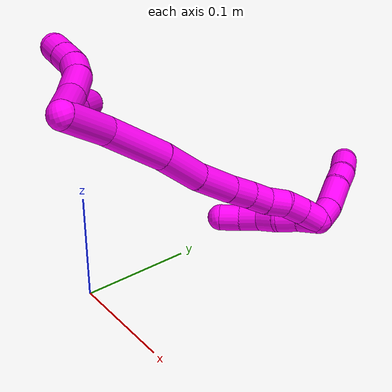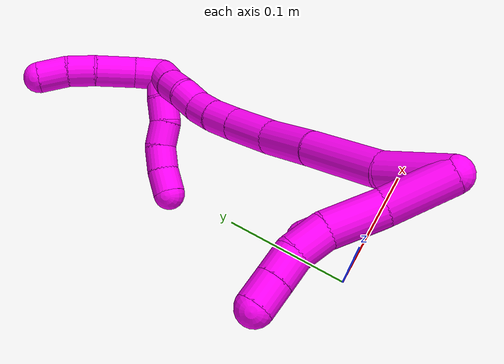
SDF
<sdf version="1.7">
 <world name="default">
  <model name="photoneo_s_sensor">
   <static>1</static>
   <pose>0 0 2 1.57079 1.57079 3.14159</pose>
   <link name="link">
    <inertial><mass>0.1</mass></inertial>
    <sensor name="sensor" type="depth">
     <update_rate>30</update_rate>
     <camera>
      <horizontal_fov>1.22</horizontal_fov>
      <image><width>1920</width><height>1200</height><format>B8G8R8</format></image>
      <clip><near>0.1</near><far>4</far></clip>
      <depth_camera><output>points</output></depth_camera>
     </camera>
     <plugin name="camera_plugin" filename="libgazebo_ros_depth_camera.so">
      <baseline>0.2</baseline>
      <alwaysOn>1</alwaysOn>
      <updateRate>0.0</updateRate>
      <cameraName>camera_ir</cameraName>
      <imageTopicName>/camera/color/image_raw</imageTopicName>
      <cameraInfoTopicName>/camera/color/camera_info</cameraInfoTopicName>
      <depthImageTopicName>/camera/depth/image_raw</depthImageTopicName>
      <depthImageCameraInfoTopicName>/camera/depth/camera_info</depthImageCameraInfoTopicName>
      <pointCloudTopicName>/camera/depth/points</pointCloudTopicName>
      <frameName>fr_optical</frameName>
      <pointCloudCutoff>0.1</pointCloudCutoff>
      <pointCloudCutoffMax>2.0</pointCloudCutoffMax>
      <distortionK1>0</distortionK1>
      <distortionK2>0</distortionK2>
      <distortionK3>0</distortionK3>
      <distortionT1>0</distortionT1>
      <distortionT2>0</distortionT2>
      <CxPrime>0</CxPrime>
      <Cx>0</Cx>
      <Cy>0</Cy>
      <focalLength>0</focalLength>
      <hackBaseline>0</hackBaseline>
     </plugin>
    </sensor>
   </link>
  </model>
  <model name="bin">
   <static>1</static>
   <link name="bottom">
    <collision name="collision-bottom">
     <pose>0 0 -0.01 0 -0 0</pose>
     <geometry><box><size>0.8 0.6 0.02</size></box></geometry>
     <surface>
      <friction><ode><mu>100</mu><mu2>100</mu2></ode></friction>
      <contact><collide_bitmask>65535</collide_bitmask></contact>
     </surface>
    </collision>
   </link>
   <link name="west_wall">
    <collision name="collision-west_wall">
     <pose>-0.41 0 0.1 0 -0 0</pose>
     <geometry><box><size>0.02 0.6 0.2</size></box></geometry>
     <surface>
      <friction><ode><mu>100</mu><mu2>100</mu2></ode></friction>
      <contact><collide_bitmask>65535</collide_bitmask></contact>
     </surface>
    </collision>
   </link>
   <link name="east_wall">
    <collision name="collision-east_wall">
     <pose>0.41 0 0.1 0 -0 0</pose>
     <geometry><box><size>0.02 0.6 0.2</size></box></geometry>
     <surface>
      <friction><ode><mu>100</mu><mu2>100</mu2></ode></friction>
      <contact><collide_bitmask>65535</collide_bitmask></contact>
     </surface>
    </collision>
   </link>
   <link name="south_wall">
    <collision name="collision-south_wall">
     <pose>0 -0.31 0.1 0 -0 0</pose>
     <geometry><box><size>0.8 0.02 0.2</size></box></geometry>
     <surface>
      <friction><ode><mu>100</mu><mu2>100</mu2></ode></friction>
      <contact><collide_bitmask>65535</collide_bitmask></contact>
     </surface>
    </collision>
   </link>
   <link name="north_wall">
    <collision name="collision-north_wall">
     <pose>0 0.31 0.1 0 -0 0</pose>
     <geometry><box><size>0.8 0.02 0.2</size></box></geometry>
     <surface>
      <friction><ode><mu>100</mu><mu2>100</mu2></ode></friction>
      <contact><collide_bitmask>65535</collide_bitmask></contact>
     </surface>
    </collision>
   </link>
  </model>
  <model name="10">
   <static>0</static>
   <link name="10">
    <collision name="collision-cylinder-e_1_2_8">
     <pose>-0.01334 0.018767 0.003786 -1.37174 -0.60855 0.503123</pose>
     <geometry><cylinder><radius>0.0125</radius><length>0.046668</length></cylinder></geometry>
     <surface>
      <friction><ode><mu>1.16</mu><mu2>1.16</mu2><slip1>0</slip1><slip2>0</slip2></ode></friction>
      <contact><ode><kp>1e+06</kp><kd>1</kd><max_vel>0</max_vel><min_depth>0.001</min_depth></ode></contact>
     </surface>
    </collision>
    <visual name="visual-cylinder-e_1_2_8">
     <pose>-0.01334 0.018767 0.003786 -1.37174 -0.60855 0.503123</pose>
     <geometry><cylinder><radius>0.0125</radius><length>0.046668</length></cylinder></geometry>
     <material><ambient>1 0 0.964706 1</ambient></material>
    </visual>
    <collision name="collision-cylinder-e_2_8_9">
     <pose>-0.036292 0.053401 0.013466 -1.2151 -0.516483 0.363252</pose>
     <geometry><cylinder><radius>0.0125</radius><length>0.038932</length></cylinder></geometry>
     <surface>
      <friction><ode><mu>1.16</mu><mu2>1.16</mu2><slip1>0</slip1><slip2>0</slip2></ode></friction>
      <contact><ode><kp>1e+06</kp><kd>1</kd><max_vel>0</max_vel><min_depth>0.001</min_depth></ode></contact>
     </surface>
    </collision>
    <visual name="visual-cylinder-e_2_8_9">
     <pose>-0.036292 0.053401 0.013466 -1.2151 -0.516483 0.363252</pose>
     <geometry><cylinder><radius>0.0125</radius><length>0.038932</length></cylinder></geometry>
     <material><ambient>1 0 0.964706 1</ambient></material>
    </visual>
    <collision name="collision-cylinder-e_3_9_10">
     <pose>-0.053711 0.076792 0.02454 -0.96793 -0.707191 0.383289</pose>
     <geometry><cylinder><radius>0.0125</radius><length>0.02403</length></cylinder></geometry>
     <surface>
      <friction><ode><mu>1.16</mu><mu2>1.16</mu2><slip1>0</slip1><slip2>0</slip2></ode></friction>
      <contact><ode><kp>1e+06</kp><kd>1</kd><max_vel>0</max_vel><min_depth>0.001</min_depth></ode></contact>
     </surface>
    </collision>
    <visual name="visual-cylinder-e_3_9_10">
     <pose>-0.053711 0.076792 0.02454 -0.96793 -0.707191 0.383289</pose>
     <geometry><cylinder><radius>0.0125</radius><length>0.02403</length></cylinder></geometry>
     <material><ambient>1 0 0.964706 1</ambient></material>
    </visual>
    <collision name="collision-cylinder-e_4_10_11">
     <pose>-0.069643 0.088079 0.034545 -0.66221 -0.925273 0.33959</pose>
     <geometry><cylinder><radius>0.0125</radius><length>0.020345</length></cylinder></geometry>
     <surface>
      <friction><ode><mu>1.16</mu><mu2>1.16</mu2><slip1>0</slip1><slip2>0</slip2></ode></friction>
      <contact><ode><kp>1e+06</kp><kd>1</kd><max_vel>0</max_vel><min_depth>0.001</min_depth></ode></contact>
     </surface>
    </collision>
    <visual name="visual-cylinder-e_4_10_11">
     <pose>-0.069643 0.088079 0.034545 -0.66221 -0.925273 0.33959</pose>
     <geometry><cylinder><radius>0.0125</radius><length>0.020345</length></cylinder></geometry>
     <material><ambient>1 0 0.964706 1</ambient></material>
    </visual>
    <collision name="collision-cylinder-e_5_11_6">
     <pose>-0.08579 0.095599 0.044039 -0.67778 -0.929228 0.349732</pose>
     <geometry><cylinder><radius>0.0125</radius><length>0.020025</length></cylinder></geometry>
     <surface>
      <friction><ode><mu>1.16</mu><mu2>1.16</mu2><slip1>0</slip1><slip2>0</slip2></ode></friction>
      <contact><ode><kp>1e+06</kp><kd>1</kd><max_vel>0</max_vel><min_depth>0.001</min_depth></ode></contact>
     </surface>
    </collision>
    <visual name="visual-cylinder-e_5_11_6">
     <pose>-0.08579 0.095599 0.044039 -0.67778 -0.929228 0.349732</pose>
     <geometry><cylinder><radius>0.0125</radius><length>0.020025</length></cylinder></geometry>
     <material><ambient>1 0 0.964706 1</ambient></material>
    </visual>
    <collision name="collision-cylinder-e_1_2_12">
     <pose>-0.015408 0.020438 -0.000996 -1.61951 -0.645409 0.675295</pose>
     <geometry><cylinder><radius>0.0125</radius><length>0.051228</length></cylinder></geometry>
     <surface>
      <friction><ode><mu>1.16</mu><mu2>1.16</mu2><slip1>0</slip1><slip2>0</slip2></ode></friction>
      <contact><ode><kp>1e+06</kp><kd>1</kd><max_vel>0</max_vel><min_depth>0.001</min_depth></ode></contact>
     </surface>
    </collision>
    <visual name="visual-cylinder-e_1_2_12">
     <pose>-0.015408 0.020438 -0.000996 -1.61951 -0.645409 0.675295</pose>
     <geometry><cylinder><radius>0.0125</radius><length>0.051228</length></cylinder></geometry>
     <material><ambient>1 0 0.964706 1</ambient></material>
    </visual>
    <collision name="collision-cylinder-e_2_12_5">
     <pose>-0.044291 0.061154 -0.003354 -1.63785 -0.585496 0.623625</pose>
     <geometry><cylinder><radius>0.0125</radius><length>0.048772</length></cylinder></geometry>
     <surface>
      <friction><ode><mu>1.16</mu><mu2>1.16</mu2><slip1>0</slip1><slip2>0</slip2></ode></friction>
      <contact><ode><kp>1e+06</kp><kd>1</kd><max_vel>0</max_vel><min_depth>0.001</min_depth></ode></contact>
     </surface>
    </collision>
    <visual name="visual-cylinder-e_2_12_5">
     <pose>-0.044291 0.061154 -0.003354 -1.63785 -0.585496 0.623625</pose>
     <geometry><cylinder><radius>0.0125</radius><length>0.048772</length></cylinder></geometry>
     <material><ambient>1 0 0.964706 1</ambient></material>
    </visual>
    <collision name="collision-cylinder-e_1_2_13">
     <pose>-0.004021 0.021809 -0.012509 -2.09153 -0.158594 0.27266</pose>
     <geometry><cylinder><radius>0.0125</radius><length>0.050923</length></cylinder></geometry>
     <surface>
      <friction><ode><mu>1.16</mu><mu2>1.16</mu2><slip1>0</slip1><slip2>0</slip2></ode></friction>
      <contact><ode><kp>1e+06</kp><kd>1</kd><max_vel>0</max_vel><min_depth>0.001</min_depth></ode></contact>
     </surface>
    </collision>
    <visual name="visual-cylinder-e_1_2_13">
     <pose>-0.004021 0.021809 -0.012509 -2.09153 -0.158594 0.27266</pose>
     <geometry><cylinder><radius>0.0125</radius><length>0.050923</length></cylinder></geometry>
     <material><ambient>1 0 0.964706 1</ambient></material>
    </visual>
    <collision name="collision-cylinder-e_2_13_14">
     <pose>-0.007072 0.068212 -0.044227 -2.23393 0.03107 -0.063678</pose>
     <geometry><cylinder><radius>0.0125</radius><length>0.062443</length></cylinder></geometry>
     <surface>
      <friction><ode><mu>1.16</mu><mu2>1.16</mu2><slip1>0</slip1><slip2>0</slip2></ode></friction>
      <contact><ode><kp>1e+06</kp><kd>1</kd><max_vel>0</max_vel><min_depth>0.001</min_depth></ode></contact>
     </surface>
    </collision>
    <visual name="visual-cylinder-e_2_13_14">
     <pose>-0.007072 0.068212 -0.044227 -2.23393 0.03107 -0.063678</pose>
     <geometry><cylinder><radius>0.0125</radius><length>0.062443</length></cylinder></geometry>
     <material><ambient>1 0 0.964706 1</ambient></material>
    </visual>
    <collision name="collision-cylinder-e_3_14_15">
     <pose>-0.006128 0.108923 -0.078365 -2.31787 -0.001161 0.002657</pose>
     <geometry><cylinder><radius>0.0125</radius><length>0.043938</length></cylinder></geometry>
     <surface>
      <friction><ode><mu>1.16</mu><mu2>1.16</mu2><slip1>0</slip1><slip2>0</slip2></ode></friction>
      <contact><ode><kp>1e+06</kp><kd>1</kd><max_vel>0</max_vel><min_depth>0.001</min_depth></ode></contact>
     </surface>
    </collision>
    <visual name="visual-cylinder-e_3_14_15">
     <pose>-0.006128 0.108923 -0.078365 -2.31787 -0.001161 0.002657</pose>
     <geometry><cylinder><radius>0.0125</radius><length>0.043938</length></cylinder></geometry>
     <material><ambient>1 0 0.964706 1</ambient></material>
    </visual>
    <collision name="collision-cylinder-e_4_15_16">
     <pose>-0.00485 0.140392 -0.10471 -2.21025 0.068038 -0.135237</pose>
     <geometry><cylinder><radius>0.0125</radius><length>0.038352</length></cylinder></geometry>
     <surface>
      <friction><ode><mu>1.16</mu><mu2>1.16</mu2><slip1>0</slip1><slip2>0</slip2></ode></friction>
      <contact><ode><kp>1e+06</kp><kd>1</kd><max_vel>0</max_vel><min_depth>0.001</min_depth></ode></contact>
     </surface>
    </collision>
    <visual name="visual-cylinder-e_4_15_16">
     <pose>-0.00485 0.140392 -0.10471 -2.21025 0.068038 -0.135237</pose>
     <geometry><cylinder><radius>0.0125</radius><length>0.038352</length></cylinder></geometry>
     <material><ambient>1 0 0.964706 1</ambient></material>
    </visual>
    <collision name="collision-cylinder-e_5_16_17">
     <pose>-0.002291 0.165672 -0.122739 -2.15831 0.104874 -0.1954</pose>
     <geometry><cylinder><radius>0.0125</radius><length>0.023989</length></cylinder></geometry>
     <surface>
      <friction><ode><mu>1.16</mu><mu2>1.16</mu2><slip1>0</slip1><slip2>0</slip2></ode></friction>
      <contact><ode><kp>1e+06</kp><kd>1</kd><max_vel>0</max_vel><min_depth>0.001</min_depth></ode></contact>
     </surface>
    </collision>
    <visual name="visual-cylinder-e_5_16_17">
     <pose>-0.002291 0.165672 -0.122739 -2.15831 0.104874 -0.1954</pose>
     <geometry><cylinder><radius>0.0125</radius><length>0.023989</length></cylinder></geometry>
     <material><ambient>1 0 0.964706 1</ambient></material>
    </visual>
    <collision name="collision-cylinder-e_6_17_18">
     <pose>0.000854 0.183435 -0.13552 -2.23781 0.187171 -0.382026</pose>
     <geometry><cylinder><radius>0.0125</radius><length>0.020298</length></cylinder></geometry>
     <surface>
      <friction><ode><mu>1.16</mu><mu2>1.16</mu2><slip1>0</slip1><slip2>0</slip2></ode></friction>
      <contact><ode><kp>1e+06</kp><kd>1</kd><max_vel>0</max_vel><min_depth>0.001</min_depth></ode></contact>
     </surface>
    </collision>
    <visual name="visual-cylinder-e_6_17_18">
     <pose>0.000854 0.183435 -0.13552 -2.23781 0.187171 -0.382026</pose>
     <geometry><cylinder><radius>0.0125</radius><length>0.020298</length></cylinder></geometry>
     <material><ambient>1 0 0.964706 1</ambient></material>
    </visual>
    <collision name="collision-cylinder-e_7_18_19">
     <pose>0.006604 0.19916 -0.146517 -2.11988 0.395467 -0.686617</pose>
     <geometry><cylinder><radius>0.0125</radius><length>0.020048</length></cylinder></geometry>
     <surface>
      <friction><ode><mu>1.16</mu><mu2>1.16</mu2><slip1>0</slip1><slip2>0</slip2></ode></friction>
      <contact><ode><kp>1e+06</kp><kd>1</kd><max_vel>0</max_vel><min_depth>0.001</min_depth></ode></contact>
     </surface>
    </collision>
    <visual name="visual-cylinder-e_7_18_19">
     <pose>0.006604 0.19916 -0.146517 -2.11988 0.395467 -0.686617</pose>
     <geometry><cylinder><radius>0.0125</radius><length>0.020048</length></cylinder></geometry>
     <material><ambient>1 0 0.964706 1</ambient></material>
    </visual>
    <collision name="collision-cylinder-e_8_19_20">
     <pose>0.012753 0.214127 -0.158037 -2.32834 0.23069 -0.525649</pose>
     <geometry><cylinder><radius>0.0125</radius><length>0.020009</length></cylinder></geometry>
     <surface>
      <friction><ode><mu>1.16</mu><mu2>1.16</mu2><slip1>0</slip1><slip2>0</slip2></ode></friction>
      <contact><ode><kp>1e+06</kp><kd>1</kd><max_vel>0</max_vel><min_depth>0.001</min_depth></ode></contact>
     </surface>
    </collision>
    <visual name="visual-cylinder-e_8_19_20">
     <pose>0.012753 0.214127 -0.158037 -2.32834 0.23069 -0.525649</pose>
     <geometry><cylinder><radius>0.0125</radius><length>0.020009</length></cylinder></geometry>
     <material><ambient>1 0 0.964706 1</ambient></material>
    </visual>
    <collision name="collision-cylinder-e_9_20_1">
     <pose>0.017933 0.227381 -0.172041 -2.44005 0.293469 -0.767773</pose>
     <geometry><cylinder><radius>0.0125</radius><length>0.020001</length></cylinder></geometry>
     <surface>
      <friction><ode><mu>1.16</mu><mu2>1.16</mu2><slip1>0</slip1><slip2>0</slip2></ode></friction>
      <contact><ode><kp>1e+06</kp><kd>1</kd><max_vel>0</max_vel><min_depth>0.001</min_depth></ode></contact>
     </surface>
    </collision>
    <visual name="visual-cylinder-e_9_20_1">
     <pose>0.017933 0.227381 -0.172041 -2.44005 0.293469 -0.767773</pose>
     <geometry><cylinder><radius>0.0125</radius><length>0.020001</length></cylinder></geometry>
     <material><ambient>1 0 0.964706 1</ambient></material>
    </visual>
    <collision name="collision-cylinder-e_1_1_21">
     <pose>0.011535 0.231191 -0.176514 0.695264 -1.19207 -0.482028</pose>
     <geometry><cylinder><radius>0.0125</radius><length>0.02</length></cylinder></geometry>
     <surface>
      <friction><ode><mu>1.16</mu><mu2>1.16</mu2><slip1>0</slip1><slip2>0</slip2></ode></friction>
      <contact><ode><kp>1e+06</kp><kd>1</kd><max_vel>0</max_vel><min_depth>0.001</min_depth></ode></contact>
     </surface>
    </collision>
    <visual name="visual-cylinder-e_1_1_21">
     <pose>0.011535 0.231191 -0.176514 0.695264 -1.19207 -0.482028</pose>
     <geometry><cylinder><radius>0.0125</radius><length>0.02</length></cylinder></geometry>
     <material><ambient>1 0 0.964706 1</ambient></material>
    </visual>
    <collision name="collision-cylinder-e_2_21_22">
     <pose>-0.006981 0.225488 -0.171729 1.04231 -1.17446 -0.729943</pose>
     <geometry><cylinder><radius>0.0125</radius><length>0.02</length></cylinder></geometry>
     <surface>
      <friction><ode><mu>1.16</mu><mu2>1.16</mu2><slip1>0</slip1><slip2>0</slip2></ode></friction>
      <contact><ode><kp>1e+06</kp><kd>1</kd><max_vel>0</max_vel><min_depth>0.001</min_depth></ode></contact>
     </surface>
    </collision>
    <visual name="visual-cylinder-e_2_21_22">
     <pose>-0.006981 0.225488 -0.171729 1.04231 -1.17446 -0.729943</pose>
     <geometry><cylinder><radius>0.0125</radius><length>0.02</length></cylinder></geometry>
     <material><ambient>1 0 0.964706 1</ambient></material>
    </visual>
    <collision name="collision-cylinder-e_3_22_23">
     <pose>-0.026053 0.22219 -0.168041 -0.020554 -1.39573 0.017238</pose>
     <geometry><cylinder><radius>0.0125</radius><length>0.02</length></cylinder></geometry>
     <surface>
      <friction><ode><mu>1.16</mu><mu2>1.16</mu2><slip1>0</slip1><slip2>0</slip2></ode></friction>
      <contact><ode><kp>1e+06</kp><kd>1</kd><max_vel>0</max_vel><min_depth>0.001</min_depth></ode></contact>
     </surface>
    </collision>
    <visual name="visual-cylinder-e_3_22_23">
     <pose>-0.026053 0.22219 -0.168041 -0.020554 -1.39573 0.017238</pose>
     <geometry><cylinder><radius>0.0125</radius><length>0.02</length></cylinder></geometry>
     <material><ambient>1 0 0.964706 1</ambient></material>
    </visual>
    <collision name="collision-cylinder-e_4_23_24">
     <pose>-0.045079 0.21895 -0.164058 0.970738 -1.16265 -0.667237</pose>
     <geometry><cylinder><radius>0.0125</radius><length>0.02</length></cylinder></geometry>
     <surface>
      <friction><ode><mu>1.16</mu><mu2>1.16</mu2><slip1>0</slip1><slip2>0</slip2></ode></friction>
      <contact><ode><kp>1e+06</kp><kd>1</kd><max_vel>0</max_vel><min_depth>0.001</min_depth></ode></contact>
     </surface>
    </collision>
    <visual name="visual-cylinder-e_4_23_24">
     <pose>-0.045079 0.21895 -0.164058 0.970738 -1.16265 -0.667237</pose>
     <geometry><cylinder><radius>0.0125</radius><length>0.02</length></cylinder></geometry>
     <material><ambient>1 0 0.964706 1</ambient></material>
    </visual>
    <collision name="collision-cylinder-e_5_24_4">
     <pose>-0.062491 0.210913 -0.158728 0.995274 -0.96725 -0.555876</pose>
     <geometry><cylinder><radius>0.0125</radius><length>0.02</length></cylinder></geometry>
     <surface>
      <friction><ode><mu>1.16</mu><mu2>1.16</mu2><slip1>0</slip1><slip2>0</slip2></ode></friction>
      <contact><ode><kp>1e+06</kp><kd>1</kd><max_vel>0</max_vel><min_depth>0.001</min_depth></ode></contact>
     </surface>
    </collision>
    <visual name="visual-cylinder-e_5_24_4">
     <pose>-0.062491 0.210913 -0.158728 0.995274 -0.96725 -0.555876</pose>
     <geometry><cylinder><radius>0.0125</radius><length>0.02</length></cylinder></geometry>
     <material><ambient>1 0 0.964706 1</ambient></material>
    </visual>
    <collision name="collision-cylinder-e_1_1_25">
     <pose>0.019879 0.244504 -0.177357 -1.39036 -0.084961 0.070877</pose>
     <geometry><cylinder><radius>0.0125</radius><length>0.022333</length></cylinder></geometry>
     <surface>
      <friction><ode><mu>1.16</mu><mu2>1.16</mu2><slip1>0</slip1><slip2>0</slip2></ode></friction>
      <contact><ode><kp>1e+06</kp><kd>1</kd><max_vel>0</max_vel><min_depth>0.001</min_depth></ode></contact>
     </surface>
    </collision>
    <visual name="visual-cylinder-e_1_1_25">
     <pose>0.019879 0.244504 -0.177357 -1.39036 -0.084961 0.070877</pose>
     <geometry><cylinder><radius>0.0125</radius><length>0.022333</length></cylinder></geometry>
     <material><ambient>1 0 0.964706 1</ambient></material>
    </visual>
    <collision name="collision-cylinder-e_2_25_26">
     <pose>0.017069 0.27013 -0.168718 -1.14586 -0.115046 0.074266</pose>
     <geometry><cylinder><radius>0.0125</radius><length>0.032439</length></cylinder></geometry>
     <surface>
      <friction><ode><mu>1.16</mu><mu2>1.16</mu2><slip1>0</slip1><slip2>0</slip2></ode></friction>
      <contact><ode><kp>1e+06</kp><kd>1</kd><max_vel>0</max_vel><min_depth>0.001</min_depth></ode></contact>
     </surface>
    </collision>
    <visual name="visual-cylinder-e_2_25_26">
     <pose>0.017069 0.27013 -0.168718 -1.14586 -0.115046 0.074266</pose>
     <geometry><cylinder><radius>0.0125</radius><length>0.032439</length></cylinder></geometry>
     <material><ambient>1 0 0.964706 1</ambient></material>
    </visual>
    <collision name="collision-cylinder-e_3_26_27">
     <pose>0.013191 0.294962 -0.158992 -1.27597 -0.187802 0.139423</pose>
     <geometry><cylinder><radius>0.0125</radius><length>0.021601</length></cylinder></geometry>
     <surface>
      <friction><ode><mu>1.16</mu><mu2>1.16</mu2><slip1>0</slip1><slip2>0</slip2></ode></friction>
      <contact><ode><kp>1e+06</kp><kd>1</kd><max_vel>0</max_vel><min_depth>0.001</min_depth></ode></contact>
     </surface>
    </collision>
    <visual name="visual-cylinder-e_3_26_27">
     <pose>0.013191 0.294962 -0.158992 -1.27597 -0.187802 0.139423</pose>
     <geometry><cylinder><radius>0.0125</radius><length>0.021601</length></cylinder></geometry>
     <material><ambient>1 0 0.964706 1</ambient></material>
    </visual>
    <collision name="collision-cylinder-e_4_27_3">
     <pose>0.006834 0.315641 -0.152761 -1.28021 -0.376235 0.281661</pose>
     <geometry><cylinder><radius>0.0125</radius><length>0.023626</length></cylinder></geometry>
     <surface>
      <friction><ode><mu>1.16</mu><mu2>1.16</mu2><slip1>0</slip1><slip2>0</slip2></ode></friction>
      <contact><ode><kp>1e+06</kp><kd>1</kd><max_vel>0</max_vel><min_depth>0.001</min_depth></ode></contact>
     </surface>
    </collision>
    <visual name="visual-cylinder-e_4_27_3">
     <pose>0.006834 0.315641 -0.152761 -1.28021 -0.376235 0.281661</pose>
     <geometry><cylinder><radius>0.0125</radius><length>0.023626</length></cylinder></geometry>
     <material><ambient>1 0 0.964706 1</ambient></material>
    </visual>
    <collision name="collision-sphere-3">
     <pose>0.002493 0.326168 -0.149613 0 -0 0</pose>
     <geometry><sphere><radius>0.0125</radius></sphere></geometry>
     <surface>
      <friction><ode><mu>1.16</mu><mu2>1.16</mu2><slip1>0</slip1><slip2>0</slip2></ode></friction>
      <contact><ode><kp>1e+06</kp><kd>1</kd><max_vel>0</max_vel><min_depth>0.001</min_depth></ode></contact>
     </surface>
    </collision>
    <visual name="visual-sphere-3">
     <pose>0.002493 0.326168 -0.149613 0 -0 0</pose>
     <geometry><sphere><radius>0.0125</radius></sphere></geometry>
     <material><ambient>1 0 0.964706 1</ambient></material>
    </visual>
    <collision name="collision-sphere-27">
     <pose>0.011174 0.305115 -0.155909 0 -0 0</pose>
     <geometry><sphere><radius>0.0125</radius></sphere></geometry>
     <surface>
      <friction><ode><mu>1.16</mu><mu2>1.16</mu2><slip1>0</slip1><slip2>0</slip2></ode></friction>
      <contact><ode><kp>1e+06</kp><kd>1</kd><max_vel>0</max_vel><min_depth>0.001</min_depth></ode></contact>
     </surface>
    </collision>
    <visual name="visual-sphere-27">
     <pose>0.011174 0.305115 -0.155909 0 -0 0</pose>
     <geometry><sphere><radius>0.0125</radius></sphere></geometry>
     <material><ambient>1 0 0.964706 1</ambient></material>
    </visual>
    <collision name="collision-sphere-26">
     <pose>0.015207 0.284809 -0.162075 0 -0 0</pose>
     <geometry><sphere><radius>0.0125</radius></sphere></geometry>
     <surface>
      <friction><ode><mu>1.16</mu><mu2>1.16</mu2><slip1>0</slip1><slip2>0</slip2></ode></friction>
      <contact><ode><kp>1e+06</kp><kd>1</kd><max_vel>0</max_vel><min_depth>0.001</min_depth></ode></contact>
     </surface>
    </collision>
    <visual name="visual-sphere-26">
     <pose>0.015207 0.284809 -0.162075 0 -0 0</pose>
     <geometry><sphere><radius>0.0125</radius></sphere></geometry>
     <material><ambient>1 0 0.964706 1</ambient></material>
    </visual>
    <collision name="collision-sphere-25">
     <pose>0.018931 0.25545 -0.17536 0 -0 0</pose>
     <geometry><sphere><radius>0.0125</radius></sphere></geometry>
     <surface>
      <friction><ode><mu>1.16</mu><mu2>1.16</mu2><slip1>0</slip1><slip2>0</slip2></ode></friction>
      <contact><ode><kp>1e+06</kp><kd>1</kd><max_vel>0</max_vel><min_depth>0.001</min_depth></ode></contact>
     </surface>
    </collision>
    <visual name="visual-sphere-25">
     <pose>0.018931 0.25545 -0.17536 0 -0 0</pose>
     <geometry><sphere><radius>0.0125</radius></sphere></geometry>
     <material><ambient>1 0 0.964706 1</ambient></material>
    </visual>
    <collision name="collision-sphere-4">
     <pose>-0.070724 0.206152 -0.155639 0 -0 0</pose>
     <geometry><sphere><radius>0.0125</radius></sphere></geometry>
     <surface>
      <friction><ode><mu>1.16</mu><mu2>1.16</mu2><slip1>0</slip1><slip2>0</slip2></ode></friction>
      <contact><ode><kp>1e+06</kp><kd>1</kd><max_vel>0</max_vel><min_depth>0.001</min_depth></ode></contact>
     </surface>
    </collision>
    <visual name="visual-sphere-4">
     <pose>-0.070724 0.206152 -0.155639 0 -0 0</pose>
     <geometry><sphere><radius>0.0125</radius></sphere></geometry>
     <material><ambient>1 0 0.964706 1</ambient></material>
    </visual>
    <collision name="collision-sphere-24">
     <pose>-0.054258 0.215675 -0.161817 0 -0 0</pose>
     <geometry><sphere><radius>0.0125</radius></sphere></geometry>
     <surface>
      <friction><ode><mu>1.16</mu><mu2>1.16</mu2><slip1>0</slip1><slip2>0</slip2></ode></friction>
      <contact><ode><kp>1e+06</kp><kd>1</kd><max_vel>0</max_vel><min_depth>0.001</min_depth></ode></contact>
     </surface>
    </collision>
    <visual name="visual-sphere-24">
     <pose>-0.054258 0.215675 -0.161817 0 -0 0</pose>
     <geometry><sphere><radius>0.0125</radius></sphere></geometry>
     <material><ambient>1 0 0.964706 1</ambient></material>
    </visual>
    <collision name="collision-sphere-23">
     <pose>-0.0359 0.222226 -0.166299 0 -0 0</pose>
     <geometry><sphere><radius>0.0125</radius></sphere></geometry>
     <surface>
      <friction><ode><mu>1.16</mu><mu2>1.16</mu2><slip1>0</slip1><slip2>0</slip2></ode></friction>
      <contact><ode><kp>1e+06</kp><kd>1</kd><max_vel>0</max_vel><min_depth>0.001</min_depth></ode></contact>
     </surface>
    </collision>
    <visual name="visual-sphere-23">
     <pose>-0.0359 0.222226 -0.166299 0 -0 0</pose>
     <geometry><sphere><radius>0.0125</radius></sphere></geometry>
     <material><ambient>1 0 0.964706 1</ambient></material>
    </visual>
    <collision name="collision-sphere-22">
     <pose>-0.016206 0.222155 -0.169782 0 -0 0</pose>
     <geometry><sphere><radius>0.0125</radius></sphere></geometry>
     <surface>
      <friction><ode><mu>1.16</mu><mu2>1.16</mu2><slip1>0</slip1><slip2>0</slip2></ode></friction>
      <contact><ode><kp>1e+06</kp><kd>1</kd><max_vel>0</max_vel><min_depth>0.001</min_depth></ode></contact>
     </surface>
    </collision>
    <visual name="visual-sphere-22">
     <pose>-0.016206 0.222155 -0.169782 0 -0 0</pose>
     <geometry><sphere><radius>0.0125</radius></sphere></geometry>
     <material><ambient>1 0 0.964706 1</ambient></material>
    </visual>
    <collision name="collision-sphere-21">
     <pose>0.002243 0.228822 -0.173675 0 -0 0</pose>
     <geometry><sphere><radius>0.0125</radius></sphere></geometry>
     <surface>
      <friction><ode><mu>1.16</mu><mu2>1.16</mu2><slip1>0</slip1><slip2>0</slip2></ode></friction>
      <contact><ode><kp>1e+06</kp><kd>1</kd><max_vel>0</max_vel><min_depth>0.001</min_depth></ode></contact>
     </surface>
    </collision>
    <visual name="visual-sphere-21">
     <pose>0.002243 0.228822 -0.173675 0 -0 0</pose>
     <geometry><sphere><radius>0.0125</radius></sphere></geometry>
     <material><ambient>1 0 0.964706 1</ambient></material>
    </visual>
    <collision name="collision-sphere-1">
     <pose>0.020826 0.233559 -0.179353 0 -0 0</pose>
     <geometry><sphere><radius>0.0125</radius></sphere></geometry>
     <surface>
      <friction><ode><mu>1.16</mu><mu2>1.16</mu2><slip1>0</slip1><slip2>0</slip2></ode></friction>
      <contact><ode><kp>1e+06</kp><kd>1</kd><max_vel>0</max_vel><min_depth>0.001</min_depth></ode></contact>
     </surface>
    </collision>
    <visual name="visual-sphere-1">
     <pose>0.020826 0.233559 -0.179353 0 -0 0</pose>
     <geometry><sphere><radius>0.0125</radius></sphere></geometry>
     <material><ambient>1 0 0.964706 1</ambient></material>
    </visual>
    <collision name="collision-sphere-6">
     <pose>-0.093811 0.099356 0.048707 0 -0 0</pose>
     <geometry><sphere><radius>0.0125</radius></sphere></geometry>
     <surface>
      <friction><ode><mu>1.16</mu><mu2>1.16</mu2><slip1>0</slip1><slip2>0</slip2></ode></friction>
      <contact><ode><kp>1e+06</kp><kd>1</kd><max_vel>0</max_vel><min_depth>0.001</min_depth></ode></contact>
     </surface>
    </collision>
    <visual name="visual-sphere-6">
     <pose>-0.093811 0.099356 0.048707 0 -0 0</pose>
     <geometry><sphere><radius>0.0125</radius></sphere></geometry>
     <material><ambient>1 0 0.964706 1</ambient></material>
    </visual>
    <collision name="collision-sphere-11">
     <pose>-0.077768 0.091841 0.039371 0 -0 0</pose>
     <geometry><sphere><radius>0.0125</radius></sphere></geometry>
     <surface>
      <friction><ode><mu>1.16</mu><mu2>1.16</mu2><slip1>0</slip1><slip2>0</slip2></ode></friction>
      <contact><ode><kp>1e+06</kp><kd>1</kd><max_vel>0</max_vel><min_depth>0.001</min_depth></ode></contact>
     </surface>
    </collision>
    <visual name="visual-sphere-11">
     <pose>-0.077768 0.091841 0.039371 0 -0 0</pose>
     <geometry><sphere><radius>0.0125</radius></sphere></geometry>
     <material><ambient>1 0 0.964706 1</ambient></material>
    </visual>
    <collision name="collision-sphere-10">
     <pose>-0.061517 0.084316 0.029719 0 -0 0</pose>
     <geometry><sphere><radius>0.0125</radius></sphere></geometry>
     <surface>
      <friction><ode><mu>1.16</mu><mu2>1.16</mu2><slip1>0</slip1><slip2>0</slip2></ode></friction>
      <contact><ode><kp>1e+06</kp><kd>1</kd><max_vel>0</max_vel><min_depth>0.001</min_depth></ode></contact>
     </surface>
    </collision>
    <visual name="visual-sphere-10">
     <pose>-0.061517 0.084316 0.029719 0 -0 0</pose>
     <geometry><sphere><radius>0.0125</radius></sphere></geometry>
     <material><ambient>1 0 0.964706 1</ambient></material>
    </visual>
    <collision name="collision-sphere-9">
     <pose>-0.045905 0.069269 0.019361 0 -0 0</pose>
     <geometry><sphere><radius>0.0125</radius></sphere></geometry>
     <surface>
      <friction><ode><mu>1.16</mu><mu2>1.16</mu2><slip1>0</slip1><slip2>0</slip2></ode></friction>
      <contact><ode><kp>1e+06</kp><kd>1</kd><max_vel>0</max_vel><min_depth>0.001</min_depth></ode></contact>
     </surface>
    </collision>
    <visual name="visual-sphere-9">
     <pose>-0.045905 0.069269 0.019361 0 -0 0</pose>
     <geometry><sphere><radius>0.0125</radius></sphere></geometry>
     <material><ambient>1 0 0.964706 1</ambient></material>
    </visual>
    <collision name="collision-sphere-2">
     <geometry><sphere><radius>0.0125</radius></sphere></geometry>
     <surface>
      <friction><ode><mu>1.16</mu><mu2>1.16</mu2><slip1>0</slip1><slip2>0</slip2></ode></friction>
      <contact><ode><kp>1e+06</kp><kd>1</kd><max_vel>0</max_vel><min_depth>0.001</min_depth></ode></contact>
     </surface>
    </collision>
    <visual name="visual-sphere-2">
     <geometry><sphere><radius>0.0125</radius></sphere></geometry>
     <material><ambient>1 0 0.964706 1</ambient></material>
    </visual>
    <collision name="collision-sphere-19">
     <pose>0.010465 0.207051 -0.151344 0 -0 0</pose>
     <geometry><sphere><radius>0.0125</radius></sphere></geometry>
     <surface>
      <friction><ode><mu>1.16</mu><mu2>1.16</mu2><slip1>0</slip1><slip2>0</slip2></ode></friction>
      <contact><ode><kp>1e+06</kp><kd>1</kd><max_vel>0</max_vel><min_depth>0.001</min_depth></ode></contact>
     </surface>
    </collision>
    <visual name="visual-sphere-19">
     <pose>0.010465 0.207051 -0.151344 0 -0 0</pose>
     <geometry><sphere><radius>0.0125</radius></sphere></geometry>
     <material><ambient>1 0 0.964706 1</ambient></material>
    </visual>
    <collision name="collision-sphere-8">
     <pose>-0.026679 0.037534 0.007571 0 -0 0</pose>
     <geometry><sphere><radius>0.0125</radius></sphere></geometry>
     <surface>
      <friction><ode><mu>1.16</mu><mu2>1.16</mu2><slip1>0</slip1><slip2>0</slip2></ode></friction>
      <contact><ode><kp>1e+06</kp><kd>1</kd><max_vel>0</max_vel><min_depth>0.001</min_depth></ode></contact>
     </surface>
    </collision>
    <visual name="visual-sphere-8">
     <pose>-0.026679 0.037534 0.007571 0 -0 0</pose>
     <geometry><sphere><radius>0.0125</radius></sphere></geometry>
     <material><ambient>1 0 0.964706 1</ambient></material>
    </visual>
    <collision name="collision-sphere-12">
     <pose>-0.030815 0.040875 -0.001993 0 -0 0</pose>
     <geometry><sphere><radius>0.0125</radius></sphere></geometry>
     <surface>
      <friction><ode><mu>1.16</mu><mu2>1.16</mu2><slip1>0</slip1><slip2>0</slip2></ode></friction>
      <contact><ode><kp>1e+06</kp><kd>1</kd><max_vel>0</max_vel><min_depth>0.001</min_depth></ode></contact>
     </surface>
    </collision>
    <visual name="visual-sphere-12">
     <pose>-0.030815 0.040875 -0.001993 0 -0 0</pose>
     <geometry><sphere><radius>0.0125</radius></sphere></geometry>
     <material><ambient>1 0 0.964706 1</ambient></material>
    </visual>
    <collision name="collision-sphere-5">
     <pose>-0.057767 0.081432 -0.004716 0 -0 0</pose>
     <geometry><sphere><radius>0.0125</radius></sphere></geometry>
     <surface>
      <friction><ode><mu>1.16</mu><mu2>1.16</mu2><slip1>0</slip1><slip2>0</slip2></ode></friction>
      <contact><ode><kp>1e+06</kp><kd>1</kd><max_vel>0</max_vel><min_depth>0.001</min_depth></ode></contact>
     </surface>
    </collision>
    <visual name="visual-sphere-5">
     <pose>-0.057767 0.081432 -0.004716 0 -0 0</pose>
     <geometry><sphere><radius>0.0125</radius></sphere></geometry>
     <material><ambient>1 0 0.964706 1</ambient></material>
    </visual>
    <collision name="collision-sphere-13">
     <pose>-0.008042 0.043619 -0.025017 0 -0 0</pose>
     <geometry><sphere><radius>0.0125</radius></sphere></geometry>
     <surface>
      <friction><ode><mu>1.16</mu><mu2>1.16</mu2><slip1>0</slip1><slip2>0</slip2></ode></friction>
      <contact><ode><kp>1e+06</kp><kd>1</kd><max_vel>0</max_vel><min_depth>0.001</min_depth></ode></contact>
     </surface>
    </collision>
    <visual name="visual-sphere-13">
     <pose>-0.008042 0.043619 -0.025017 0 -0 0</pose>
     <geometry><sphere><radius>0.0125</radius></sphere></geometry>
     <material><ambient>1 0 0.964706 1</ambient></material>
    </visual>
    <collision name="collision-sphere-14">
     <pose>-0.006102 0.092805 -0.063438 0 -0 0</pose>
     <geometry><sphere><radius>0.0125</radius></sphere></geometry>
     <surface>
      <friction><ode><mu>1.16</mu><mu2>1.16</mu2><slip1>0</slip1><slip2>0</slip2></ode></friction>
      <contact><ode><kp>1e+06</kp><kd>1</kd><max_vel>0</max_vel><min_depth>0.001</min_depth></ode></contact>
     </surface>
    </collision>
    <visual name="visual-sphere-14">
     <pose>-0.006102 0.092805 -0.063438 0 -0 0</pose>
     <geometry><sphere><radius>0.0125</radius></sphere></geometry>
     <material><ambient>1 0 0.964706 1</ambient></material>
    </visual>
    <collision name="collision-sphere-15">
     <pose>-0.006153 0.125041 -0.093293 0 -0 0</pose>
     <geometry><sphere><radius>0.0125</radius></sphere></geometry>
     <surface>
      <friction><ode><mu>1.16</mu><mu2>1.16</mu2><slip1>0</slip1><slip2>0</slip2></ode></friction>
      <contact><ode><kp>1e+06</kp><kd>1</kd><max_vel>0</max_vel><min_depth>0.001</min_depth></ode></contact>
     </surface>
    </collision>
    <visual name="visual-sphere-15">
     <pose>-0.006153 0.125041 -0.093293 0 -0 0</pose>
     <geometry><sphere><radius>0.0125</radius></sphere></geometry>
     <material><ambient>1 0 0.964706 1</ambient></material>
    </visual>
    <collision name="collision-sphere-16">
     <pose>-0.003546 0.155744 -0.116127 0 -0 0</pose>
     <geometry><sphere><radius>0.0125</radius></sphere></geometry>
     <surface>
      <friction><ode><mu>1.16</mu><mu2>1.16</mu2><slip1>0</slip1><slip2>0</slip2></ode></friction>
      <contact><ode><kp>1e+06</kp><kd>1</kd><max_vel>0</max_vel><min_depth>0.001</min_depth></ode></contact>
     </surface>
    </collision>
    <visual name="visual-sphere-16">
     <pose>-0.003546 0.155744 -0.116127 0 -0 0</pose>
     <geometry><sphere><radius>0.0125</radius></sphere></geometry>
     <material><ambient>1 0 0.964706 1</ambient></material>
    </visual>
    <collision name="collision-sphere-17">
     <pose>-0.001035 0.175601 -0.129351 0 -0 0</pose>
     <geometry><sphere><radius>0.0125</radius></sphere></geometry>
     <surface>
      <friction><ode><mu>1.16</mu><mu2>1.16</mu2><slip1>0</slip1><slip2>0</slip2></ode></friction>
      <contact><ode><kp>1e+06</kp><kd>1</kd><max_vel>0</max_vel><min_depth>0.001</min_depth></ode></contact>
     </surface>
    </collision>
    <visual name="visual-sphere-17">
     <pose>-0.001035 0.175601 -0.129351 0 -0 0</pose>
     <geometry><sphere><radius>0.0125</radius></sphere></geometry>
     <material><ambient>1 0 0.964706 1</ambient></material>
    </visual>
    <collision name="collision-sphere-18">
     <pose>0.002742 0.191269 -0.141689 0 -0 0</pose>
     <geometry><sphere><radius>0.0125</radius></sphere></geometry>
     <surface>
      <friction><ode><mu>1.16</mu><mu2>1.16</mu2><slip1>0</slip1><slip2>0</slip2></ode></friction>
      <contact><ode><kp>1e+06</kp><kd>1</kd><max_vel>0</max_vel><min_depth>0.001</min_depth></ode></contact>
     </surface>
    </collision>
    <visual name="visual-sphere-18">
     <pose>0.002742 0.191269 -0.141689 0 -0 0</pose>
     <geometry><sphere><radius>0.0125</radius></sphere></geometry>
     <material><ambient>1 0 0.964706 1</ambient></material>
    </visual>
    <collision name="collision-sphere-20">
     <pose>0.015041 0.221203 -0.164729 0 -0 0</pose>
     <geometry><sphere><radius>0.0125</radius></sphere></geometry>
     <surface>
      <friction><ode><mu>1.16</mu><mu2>1.16</mu2><slip1>0</slip1><slip2>0</slip2></ode></friction>
      <contact><ode><kp>1e+06</kp><kd>1</kd><max_vel>0</max_vel><min_depth>0.001</min_depth></ode></contact>
     </surface>
    </collision>
    <visual name="visual-sphere-20">
     <pose>0.015041 0.221203 -0.164729 0 -0 0</pose>
     <geometry><sphere><radius>0.0125</radius></sphere></geometry>
     <material><ambient>1 0 0.964706 1</ambient></material>
    </visual>
    <inertial>
     <pose>-0.014588 0.131768 -0.075589 0 -0 0</pose>
     <mass>0.75</mass>
     <inertia><ixx>9.8e-05</ixx><ixy>0</ixy><ixz>0</ixz><iyy>5.1e-05</iyy><iyz>0</iyz><izz>-6.1e-05</izz></inertia>
    </inertial>
   </link>
   <pose>0.034045 -0.031019 0.205165 -0.10905 -0.475998 0.3223</pose>
  </model>
 </world>
</sdf>
